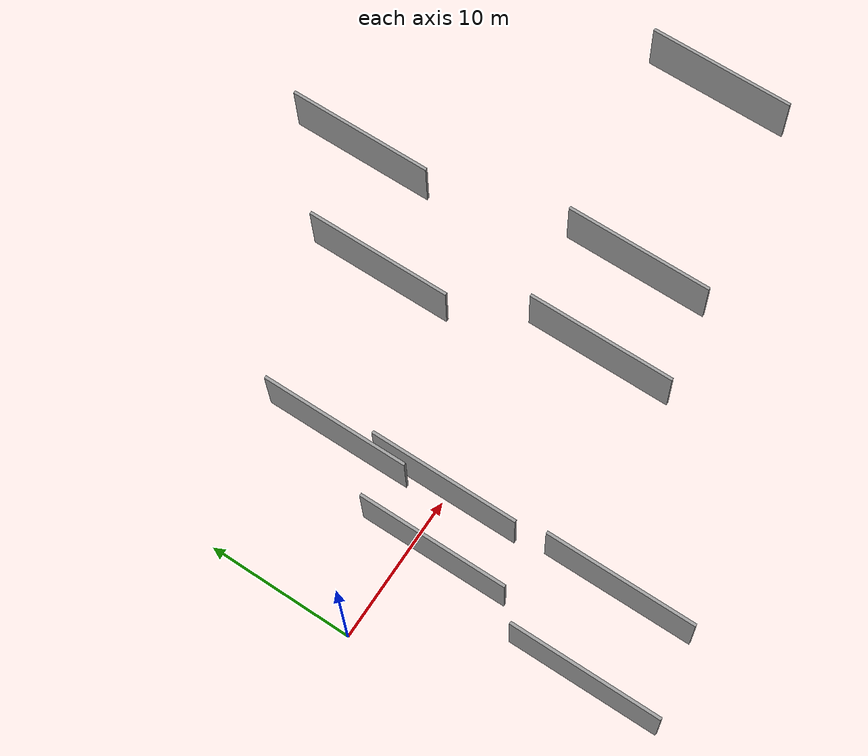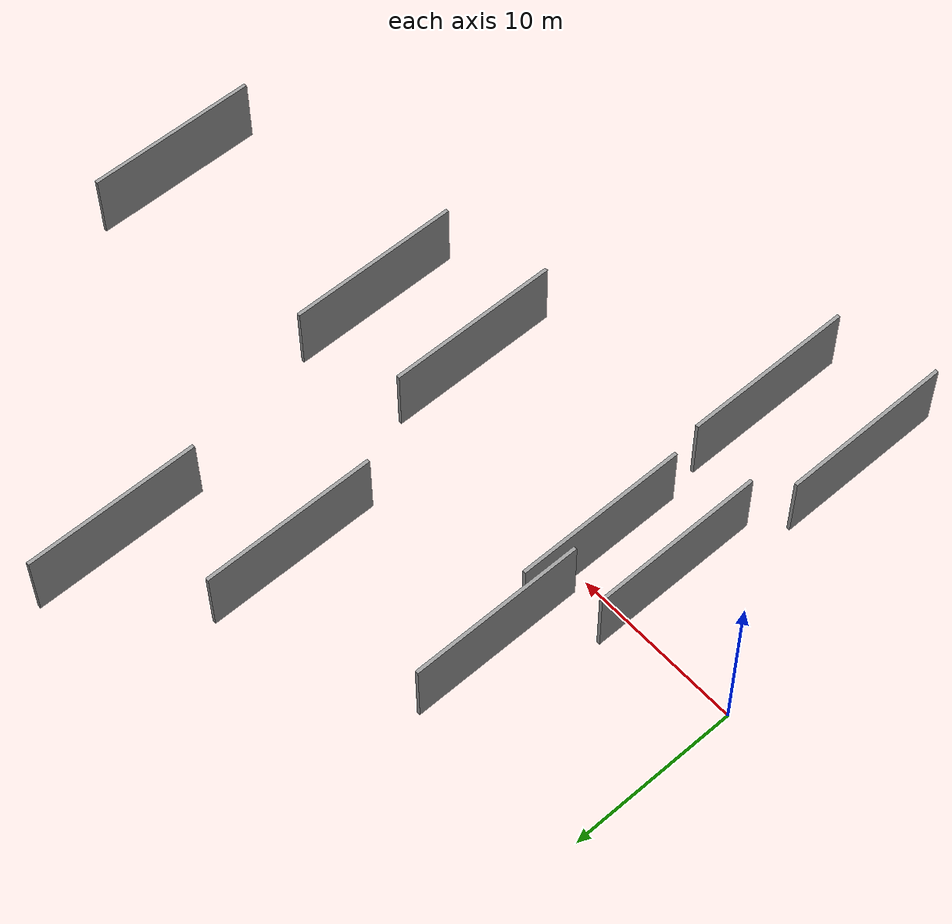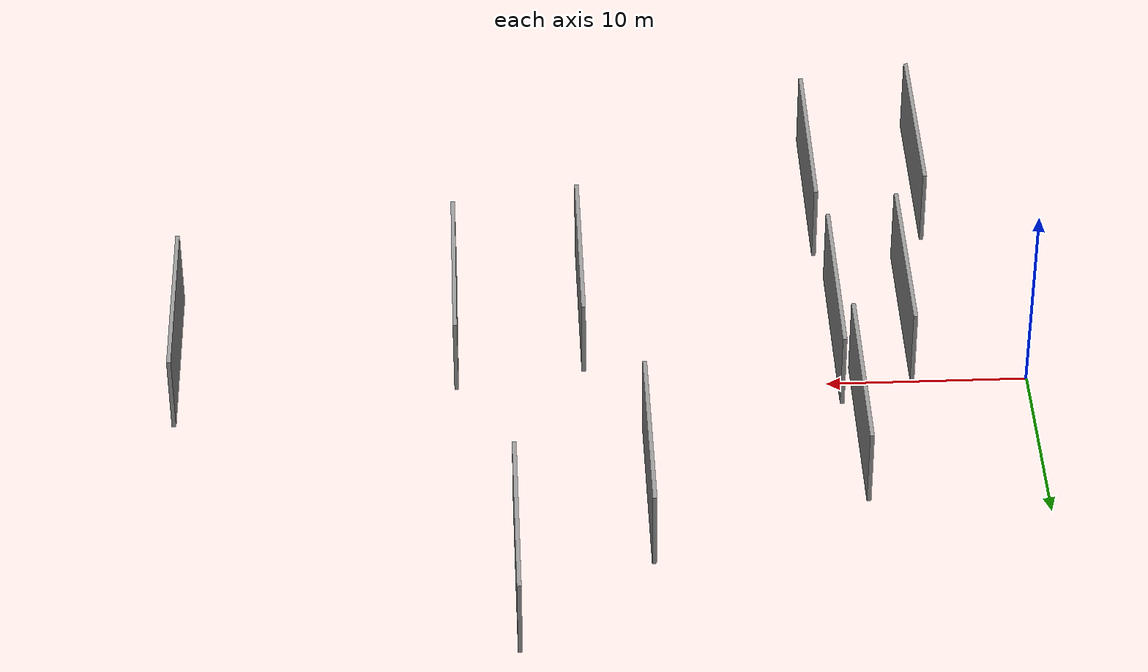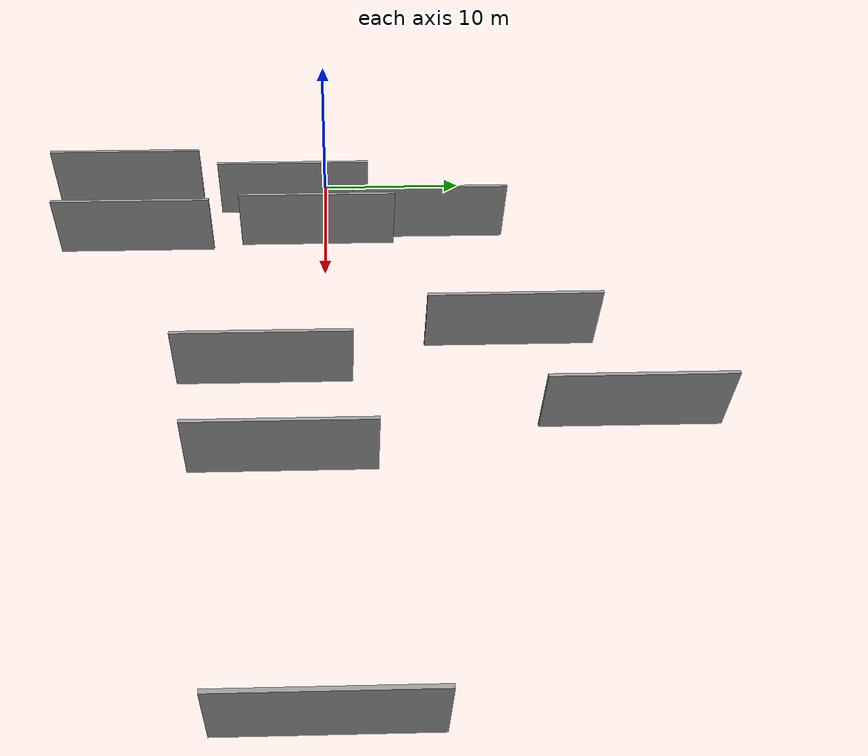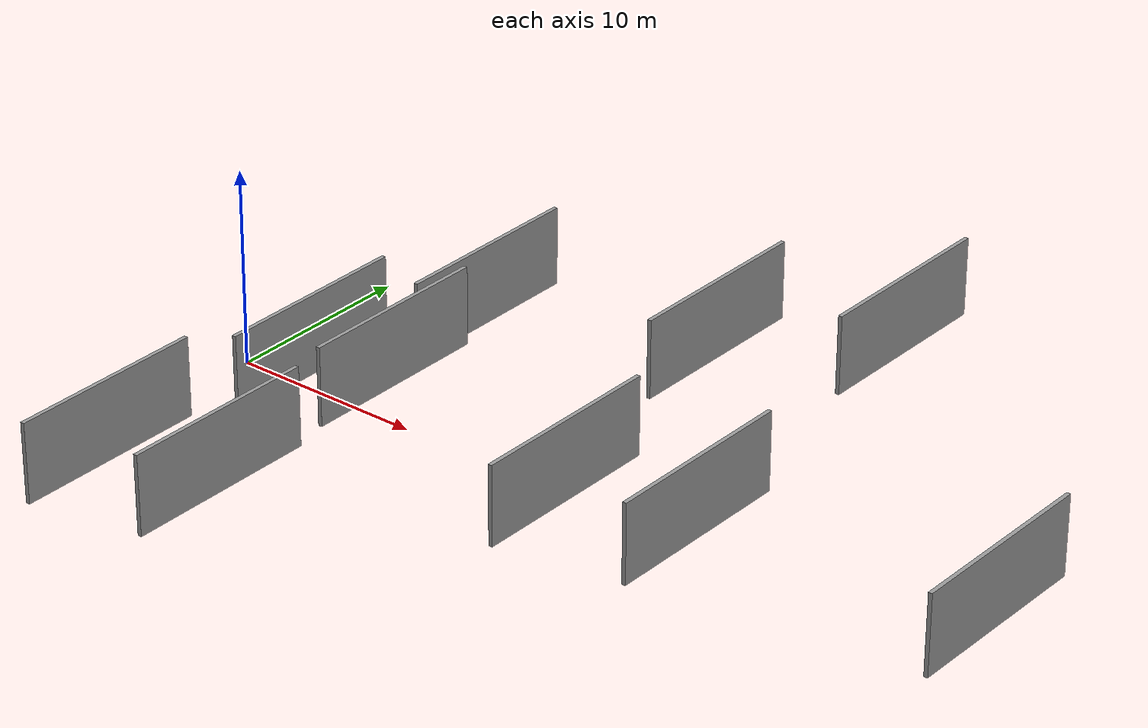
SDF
<sdf version="1.6">
 <world name="default">
  <scene>
   <sky><clouds><speed>12</speed></clouds></sky>
   <ambient>0.4 0.4 0.4 1</ambient>
   <background>0.7 0.7 0.7 1</background>
   <shadows>1</shadows>
  </scene>
  <gravity>0 0 -9.8066</gravity>
  <magnetic_field>6e-06 2.3e-05 -4.2e-05</magnetic_field>
  <physics default="0" name="default_physics" type="ode">
   <ode>
    <solver>
     <type>quick</type>
     <iters>10</iters>
     <sor>1.0</sor>
     <use_dynamic_moi_rescaling>0</use_dynamic_moi_rescaling>
    </solver>
    <constraints>
     <cfm>0</cfm>
     <erp>0.2</erp>
     <contact_max_correcting_vel>100</contact_max_correcting_vel>
     <contact_surface_layer>0.001</contact_surface_layer>
    </constraints>
   </ode>
   <max_step_size>0.004</max_step_size>
   <real_time_factor>1</real_time_factor>
   <real_time_update_rate>250</real_time_update_rate>
  </physics>
  <light name="sun" type="directional">
   <pose>0 0 10 0 0 0</pose>
   <diffuse>0.8 0.8 0.8 1</diffuse>
   <specular>0.2 0.2 0.2 1</specular>
   <attenuation>
    <range>1000</range>
    <constant>0.9</constant>
    <linear>0.01</linear>
    <quadratic>0.001</quadratic>
   </attenuation>
   <direction>-0.5 0.1 -0.9</direction>
  </light>
  <model name="grey_wall_1">
   <static>1</static>
   <pose>22.1464 -3.4357 2.5 0.000000 0.000000 1.570796</pose>
   <link name="link">
    <pose>0 0 2.00 0 0 0</pose>
    <collision name="collision"><geometry><box><size>10.00 0.2 4.00</size></box></geometry></collision>
    <visual name="visual">
     <cast_shadows>0</cast_shadows>
     <geometry><box><size>10.00 0.2 4.00</size></box></geometry>
     <material>
      <script>
       <uri>model://grey_wall/materials/scripts</uri>
       <uri>model://grey_wall/materials/textures</uri>
       <name>vrc/grey_wall</name>
      </script>
     </material>
    </visual>
   </link>
  </model>
  <model name="grey_wall_2">
   <static>1</static>
   <pose>28.3865 -2.2438 2.5 0.000000 0.000000 1.570796</pose>
   <link name="link">
    <pose>0 0 2.00 0 0 0</pose>
    <collision name="collision"><geometry><box><size>10.00 0.2 4.00</size></box></geometry></collision>
    <visual name="visual">
     <cast_shadows>0</cast_shadows>
     <geometry><box><size>10.00 0.2 4.00</size></box></geometry>
     <material>
      <script>
       <uri>model://grey_wall/materials/scripts</uri>
       <uri>model://grey_wall/materials/textures</uri>
       <name>vrc/grey_wall</name>
      </script>
     </material>
    </visual>
   </link>
  </model>
  <model name="grey_wall_3">
   <static>1</static>
   <pose>6.1399 -2.0663 2.5 0.000000 0.000000 1.570796</pose>
   <link name="link">
    <pose>0 0 2.00 0 0 0</pose>
    <collision name="collision"><geometry><box><size>10.00 0.2 4.00</size></box></geometry></collision>
    <visual name="visual">
     <cast_shadows>0</cast_shadows>
     <geometry><box><size>10.00 0.2 4.00</size></box></geometry>
     <material>
      <script>
       <uri>model://grey_wall/materials/scripts</uri>
       <uri>model://grey_wall/materials/textures</uri>
       <name>vrc/grey_wall</name>
      </script>
     </material>
    </visual>
   </link>
  </model>
  <model name="grey_wall_4">
   <static>1</static>
   <pose>42.0315 0.0472 2.5 0.000000 0.000000 1.570796</pose>
   <link name="link">
    <pose>0 0 2.00 0 0 0</pose>
    <collision name="collision"><geometry><box><size>10.00 0.2 4.00</size></box></geometry></collision>
    <visual name="visual">
     <cast_shadows>0</cast_shadows>
     <geometry><box><size>10.00 0.2 4.00</size></box></geometry>
     <material>
      <script>
       <uri>model://grey_wall/materials/scripts</uri>
       <uri>model://grey_wall/materials/textures</uri>
       <name>vrc/grey_wall</name>
      </script>
     </material>
    </visual>
   </link>
  </model>
  <model name="grey_wall_5">
   <static>1</static>
   <pose>10.1435 -12.3037 2.5 0.000000 0.000000 1.570796</pose>
   <link name="link">
    <pose>0 0 2.00 0 0 0</pose>
    <collision name="collision"><geometry><box><size>10.00 0.2 4.00</size></box></geometry></collision>
    <visual name="visual">
     <cast_shadows>0</cast_shadows>
     <geometry><box><size>10.00 0.2 4.00</size></box></geometry>
     <material>
      <script>
       <uri>model://grey_wall/materials/scripts</uri>
       <uri>model://grey_wall/materials/textures</uri>
       <name>vrc/grey_wall</name>
      </script>
     </material>
    </visual>
   </link>
  </model>
  <model name="grey_wall_6">
   <static>1</static>
   <pose>25.7251 16.5682 2.5 0.000000 0.000000 1.570796</pose>
   <link name="link">
    <pose>0 0 2.00 0 0 0</pose>
    <collision name="collision"><geometry><box><size>10.00 0.2 4.00</size></box></geometry></collision>
    <visual name="visual">
     <cast_shadows>0</cast_shadows>
     <geometry><box><size>10.00 0.2 4.00</size></box></geometry>
     <material>
      <script>
       <uri>model://grey_wall/materials/scripts</uri>
       <uri>model://grey_wall/materials/textures</uri>
       <name>vrc/grey_wall</name>
      </script>
     </material>
    </visual>
   </link>
  </model>
  <model name="grey_wall_7">
   <static>1</static>
   <pose>4.5395 -13.4483 2.5 0.000000 0.000000 1.570796</pose>
   <link name="link">
    <pose>0 0 2.00 0 0 0</pose>
    <collision name="collision"><geometry><box><size>10.00 0.2 4.00</size></box></geometry></collision>
    <visual name="visual">
     <cast_shadows>0</cast_shadows>
     <geometry><box><size>10.00 0.2 4.00</size></box></geometry>
     <material>
      <script>
       <uri>model://grey_wall/materials/scripts</uri>
       <uri>model://grey_wall/materials/textures</uri>
       <name>vrc/grey_wall</name>
      </script>
     </material>
    </visual>
   </link>
  </model>
  <model name="grey_wall_8">
   <static>1</static>
   <pose>9.7016 -0.4638 2.5 0.000000 0.000000 1.570796</pose>
   <link name="link">
    <pose>0 0 2.00 0 0 0</pose>
    <collision name="collision"><geometry><box><size>10.00 0.2 4.00</size></box></geometry></collision>
    <visual name="visual">
     <cast_shadows>0</cast_shadows>
     <geometry><box><size>10.00 0.2 4.00</size></box></geometry>
     <material>
      <script>
       <uri>model://grey_wall/materials/scripts</uri>
       <uri>model://grey_wall/materials/textures</uri>
       <name>vrc/grey_wall</name>
      </script>
     </material>
    </visual>
   </link>
  </model>
  <model name="grey_wall_9">
   <static>1</static>
   <pose>19.3839 10.8402 2.5 0.000000 0.000000 1.570796</pose>
   <link name="link">
    <pose>0 0 2.00 0 0 0</pose>
    <collision name="collision"><geometry><box><size>10.00 0.2 4.00</size></box></geometry></collision>
    <visual name="visual">
     <cast_shadows>0</cast_shadows>
     <geometry><box><size>10.00 0.2 4.00</size></box></geometry>
     <material>
      <script>
       <uri>model://grey_wall/materials/scripts</uri>
       <uri>model://grey_wall/materials/textures</uri>
       <name>vrc/grey_wall</name>
      </script>
     </material>
    </visual>
   </link>
  </model>
  <model name="grey_wall_10">
   <static>1</static>
   <pose>9.0601 6.8130 2.5 0.000000 0.000000 1.570796</pose>
   <link name="link">
    <pose>0 0 2.00 0 0 0</pose>
    <collision name="collision"><geometry><box><size>10.00 0.2 4.00</size></box></geometry></collision>
    <visual name="visual">
     <cast_shadows>0</cast_shadows>
     <geometry><box><size>10.00 0.2 4.00</size></box></geometry>
     <material>
      <script>
       <uri>model://grey_wall/materials/scripts</uri>
       <uri>model://grey_wall/materials/textures</uri>
       <name>vrc/grey_wall</name>
      </script>
     </material>
    </visual>
   </link>
  </model>
 </world>
</sdf>
